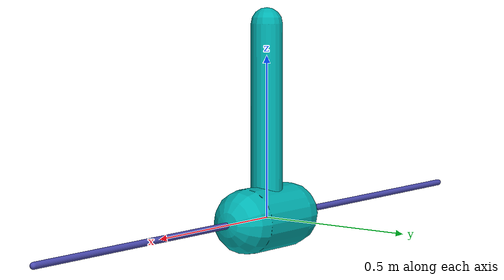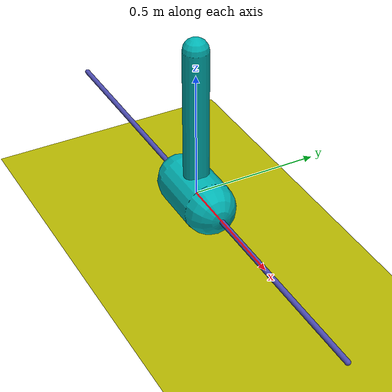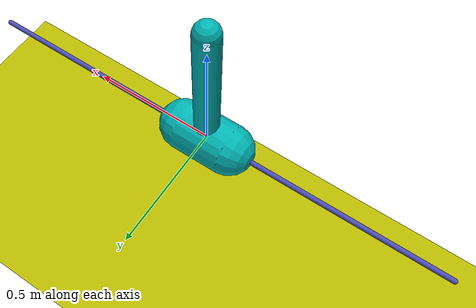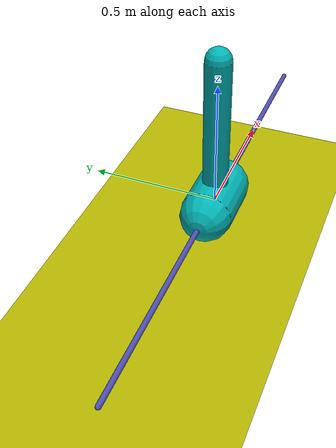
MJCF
<mujoco model="inverted_pendulum">
    <compiler inertiafromgeom="true"/>

    <asset>
        <texture type="skybox" builtin="gradient" rgb1="0.6 0.6 0.6" rgb2="0 0 0" width="512" height="512"/>
        <texture name="texplane" type="2d" builtin="checker" rgb1=".25 .25 .25" rgb2=".3 .3 .3" width="512" height="512" mark="cross" markrgb=".8 .8 .8"/>
        <material name="matplane" reflectance="0.3" texture="texplane" texrepeat="1 1" texuniform="true"/>
    </asset>

    <default>
        <joint armature="0" damping="1" limited="true"/>
        <geom contype="0" friction="1 0.1 0.1" rgba="0.7 0.7 0 1"/>
        <tendon/>
        <motor ctrlrange="-3 3"/>
    </default>

    <option gravity="0 0 -9.81" integrator="RK4" timestep="0.02"/>
    <size nstack="3000"/>

    <worldbody>
        <geom name="floor" pos="0 0 -0.5" size="0 0 1" type="plane" material="matplane"/>
        <light directional="true" diffuse=".8 .8 .8" specular=".2 .2 .2" pos="0 0 5" dir="0 0 -1"/>
        <geom name="rail" pos="0 0 0" quat="0.707 0 0.707 0" rgba="0.3 0.3 0.7 1" size="0.01 1" type="capsule"/>

        <body name="cart" pos="0 0 0">
            <inertial mass="0.48" pos="0 0 0"/>
            <joint axis="1 0 0" limited="true" name="slider" pos="0 0 0" range="-1 1" type="slide"/>
            <geom name="cart" pos="0 0 0" quat="0.707 0 0.707 0" size="0.1 0.1" type="capsule" rgba="0 0.7 0.7 1"/>

            <body name="pole" pos="0 0 0">
                <inertial mass="0.7332" pos="0 0 0.3"/>
                <joint axis="0 1 0" name="hinge" pos="0 0 0" range="-90 90" type="hinge"/>
                <geom fromto="0 0 0 0 0 0.6" name="cpole" rgba="0 0.7 0.7 1" size="0.049 0.3" type="capsule"/>
            </body>
        </body>
    </worldbody>

    <actuator>
        <motor ctrllimited="true" ctrlrange="-3 3" gear="100" joint="slider" name="slide"/>
    </actuator>
</mujoco>
